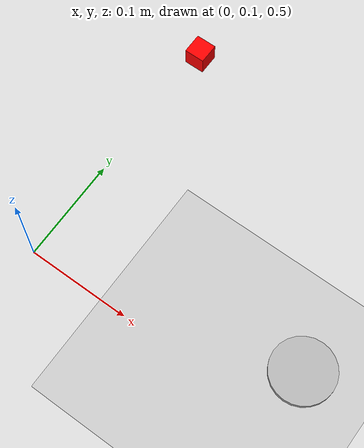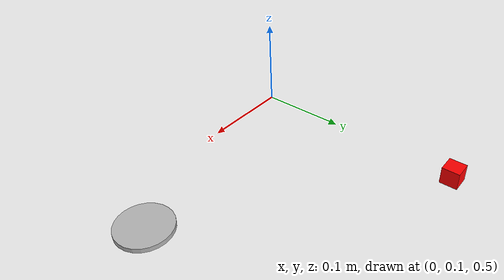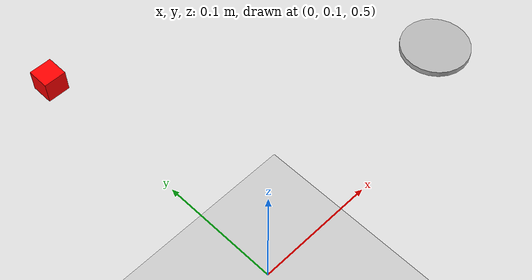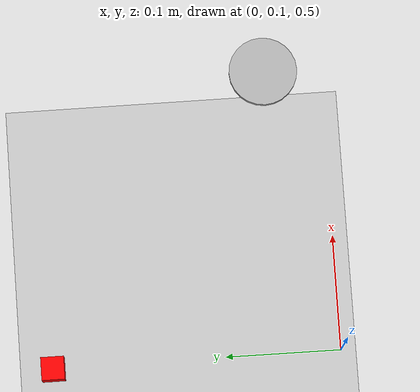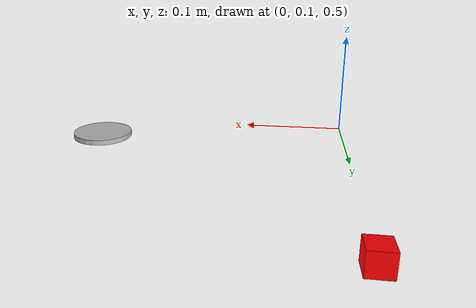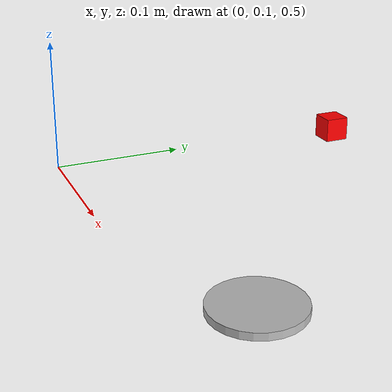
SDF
<?xml version="1.0" ?>
<sdf version="1.6">
  <world name="robot_arm_simulation">

    <!-- Physics Configuration -->
    <physics type="ode">
      <max_step_size>0.001</max_step_size>
      <real_time_factor>1</real_time_factor>
      <real_time_update_rate>1000</real_time_update_rate>
    </physics>

    <!-- Include the ground plane -->
    <include>
      <uri>model://ground_plane</uri>
    </include>

    <!-- Include a simple sun -->
    <include>
      <uri>model://sun</uri>
    </include>

    <!-- Object to be Picked -->
    <model name="pick_object">
      <pose>0 0.35 0.5 0 0 0</pose> <!-- Position (x, y, z) and orientation (roll, pitch, yaw) -->
      <static>false</static> <!-- Dynamic object that can be picked -->
      <link name="link">
        <collision name="collision">
          <geometry>
            <box>
              <size>0.02 0.02 0.02</size> <!-- Size of the box (x, y, z) -->
            </box>
          </geometry>
          <surface>
            <friction>
              <ode>
                <mu>1.0</mu>
                <mu2>1.0</mu2>
              </ode>
            </friction>
          </surface>
        </collision>
        <visual name="visual">
          <geometry>
            <box>
              <size>0.02 0.02 0.02</size> <!-- Same size as the collision -->
            </box>
          </geometry>
          <material>
            <ambient>1 0 0 1</ambient> <!-- Red color -->
            <diffuse>1 0 0 1</diffuse>
          </material>
        </visual>
        <inertial>
          <mass>0.1</mass> <!-- Mass of the object -->
        </inertial>
      </link>
    </model>

    <!-- Target Location Marker (Static) -->
    <model name="target_location">
      <pose>0.25 0.15 0.5 0 0 0</pose> <!-- Target position where the object should be placed -->
      <static>true</static>
      <link name="link">
        <collision name="collision">
          <geometry>
            <cylinder>
              <radius>0.03</radius> <!-- Adjusted radius for better visibility -->
              <length>0.02</length> <!-- Length of the target marker -->
            </cylinder>
          </geometry>
        </collision>
        <visual name="visual">
          <geometry>
            <cylinder>
              <radius>0.03</radius> <!-- Adjusted radius for better visibility -->
              <length>0.005</length>
            </cylinder>
            <material>
              <ambient>1 0 0 1</ambient> <!-- Red color for the target -->
              <diffuse>1 0 0 1</diffuse>
            </material>
          </geometry>
        </visual>
      </link>
    </model>

  </world>
</sdf>
